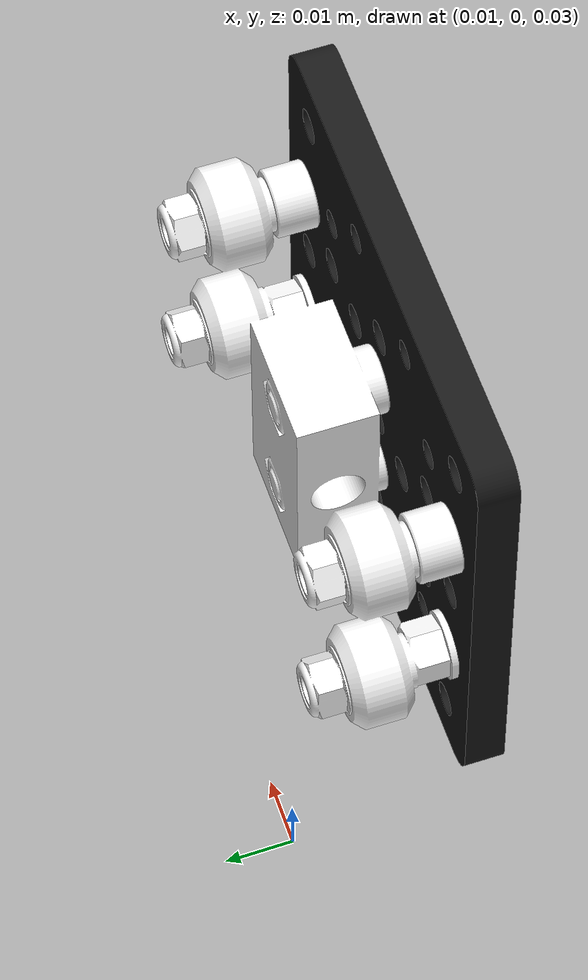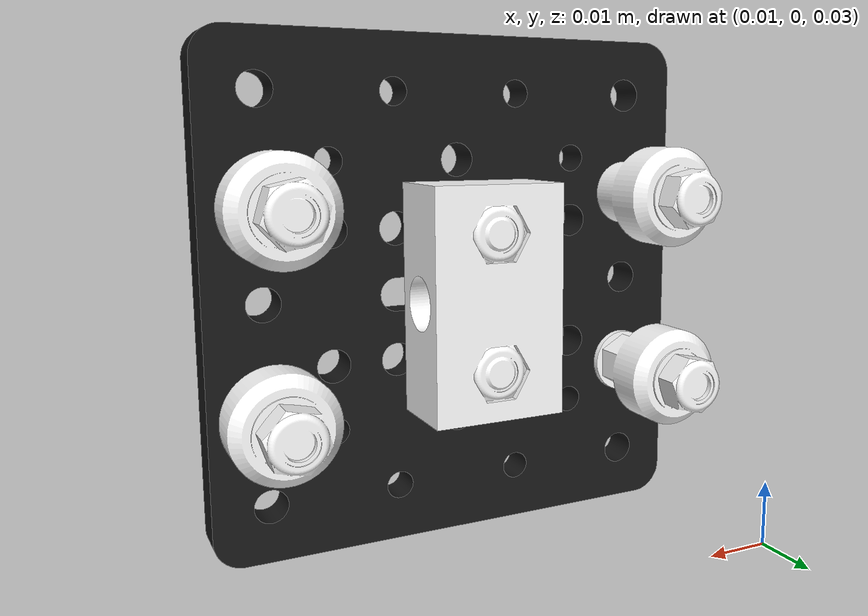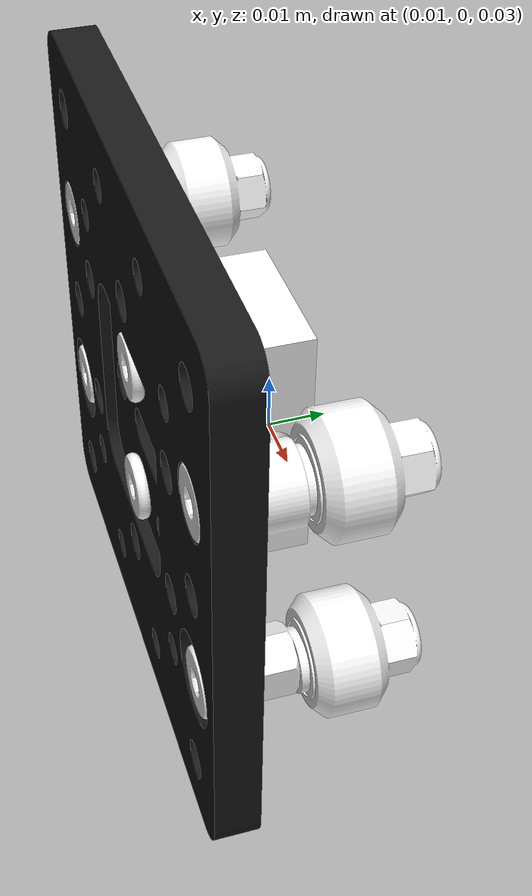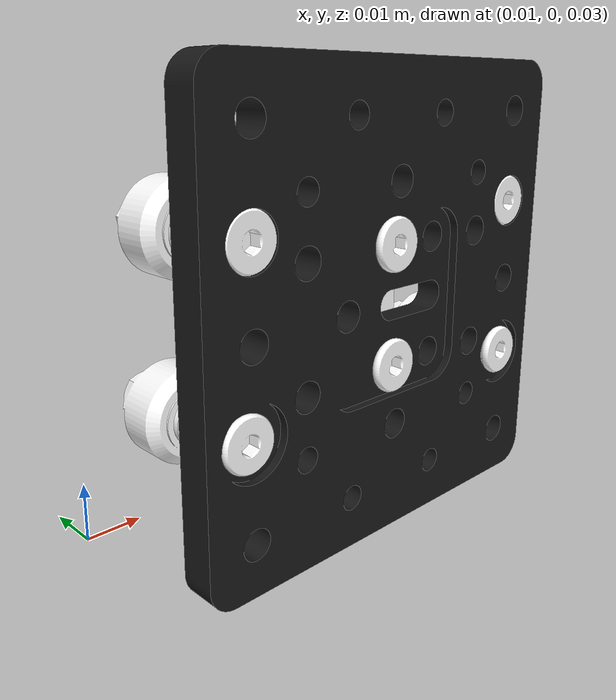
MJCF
<mujoco model="LeftHorizontalSlider">
  <default>
    <default class="visual">
      <geom group="2" type="mesh" contype="0" conaffinity="0"/>
    </default>
    <default class="collision">
      <geom group="3" type="mesh"/>
    </default>
  </default>
  <asset>
    <material name="0.301961_0.301961_0.301961_0.000000_0.028" specular="0.0" shininess="0.098051239" rgba="0.095646 0.095646 0.095646 1.000000"/>
    <material name="0.901961_0.901961_0.901961_0.000000_0.018" specular="0.0" shininess="0.514335327" rgba="1.000000 1.000000 1.000000 1.000000"/>
    <mesh file="LeftHorizontalSlider_0.obj"/>
    <mesh file="LeftHorizontalSlider_1.obj"/>
  </asset>
  <worldbody>
    <body name="LeftHorizontalSlider">
      <geom mesh="LeftHorizontalSlider_0" material="0.301961_0.301961_0.301961_0.000000_0.028" class="visual"/>
      <geom mesh="LeftHorizontalSlider_1" material="0.901961_0.901961_0.901961_0.000000_0.018" class="visual"/>
      <geom mesh="LeftHorizontalSlider_0" class="collision"/>
      <geom mesh="LeftHorizontalSlider_1" class="collision"/>
    </body>
  </worldbody>
</mujoco>
